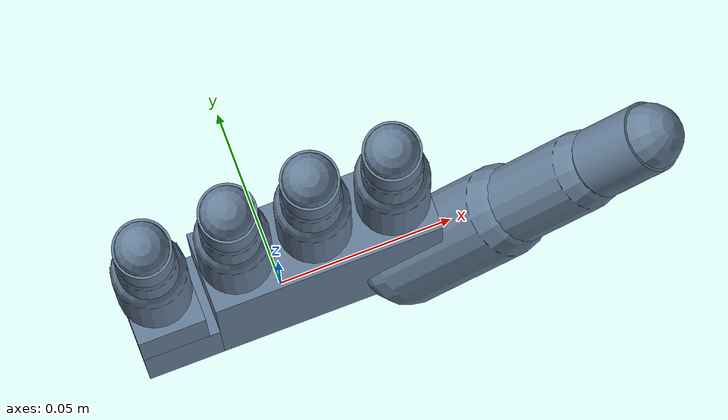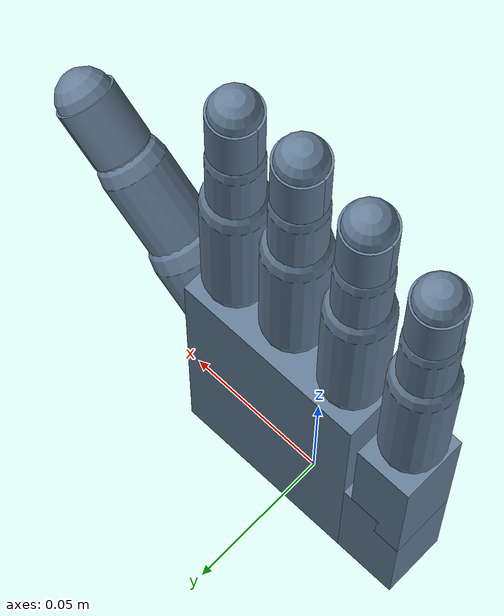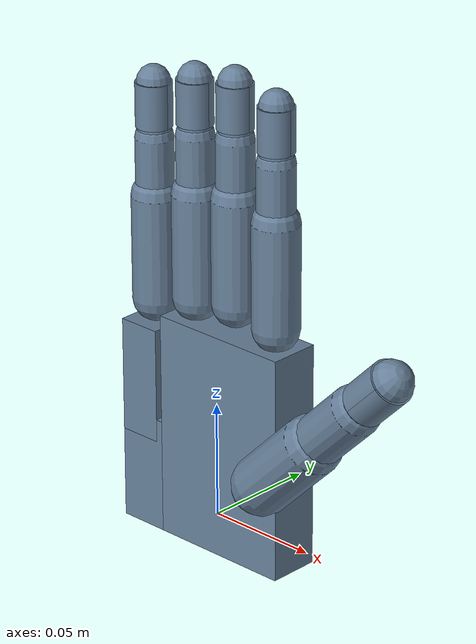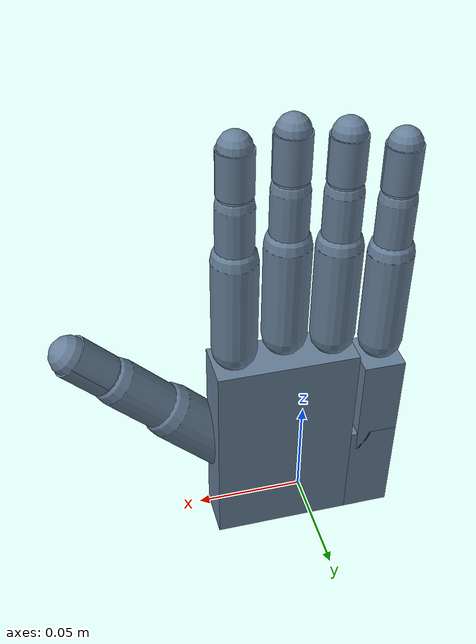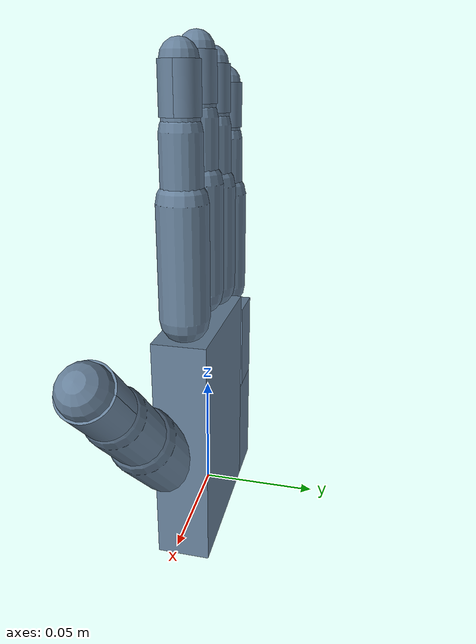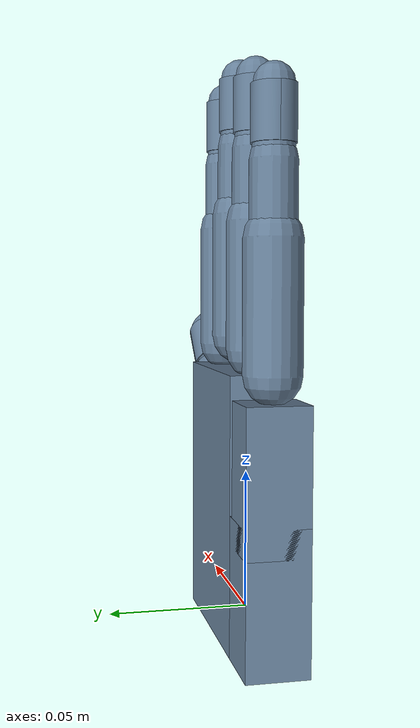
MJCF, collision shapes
<?xml version="1.0" encoding="utf-8"?>
<mujoco>
    <compiler angle="radian" coordinate="local" meshdir="../stls/hand" texturedir="../textures"></compiler>
    <option timestep="0.002" iterations="20" apirate="200">
        <flag warmstart="enable"></flag>
    </option>

    <include file="shared_simple_with_base.xml"></include>

    <asset>
        <include file="shared_asset.xml"></include>
    </asset>

    <worldbody>
        <include file="robot_simple_with_base_sensor.xml"></include>

        <light directional="true" ambient="0.2 0.2 0.2" diffuse="0.8 0.8 0.8" specular="0.3 0.3 0.3" castshadow="false" pos="0 1 4" dir="0 0 -1" name="light0"></light>
    </worldbody>
</mujoco>

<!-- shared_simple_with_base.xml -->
<!-- See LICENSE.md for legal notices. LICENSE.md must be kept together with this file. -->
<mujoco>
    <size njmax="500" nconmax="100" nuser_jnt="1" nuser_site="1" nuser_tendon="1" nuser_sensor="1" nuser_actuator="16" nstack="600000"></size>

    <visual>
        <map fogstart="3" fogend="5" force="0.1"></map>
        <quality shadowsize="4096"></quality>
    </visual>

    <default>
        <default class="robot0:asset_class">
            <geom friction="1 0.005 0.001" condim="3" margin="0.0005" contype="1" conaffinity="1"></geom>
            <joint limited="true" damping="0.1" armature="0.001" margin="0.01" frictionloss="0.001"></joint>
            <site size="0.005" rgba="0.4 0.9 0.4 1"></site>
            <general ctrllimited="true" forcelimited="true"></general>
        </default>
        <default class="robot0:D_Touch">
            <site type="box" size="0.009 0.004 0.013" pos="0 -0.004 0.018" rgba="0.8 0.8 0.8 0.15" group="4"></site>
        </default>
        <default class="robot0:DC_Hand">
            <geom material="robot0:MatColl" contype="1" conaffinity="0" group="4"></geom>
        </default>
        <default class="robot0:DC_sensor">
            <geom material="robot0:MatColl" contype="1" conaffinity="0" group="4" type="mesh"></geom>
        </default>
        <default class="robot0:D_Vizual">
            <geom material="robot0:MatViz" contype="0" conaffinity="0" group="1" type="mesh"></geom>
        </default>
        <default class="robot0:free">
            <joint type="free" damping="0" armature="0" limited="false"></joint>
        </default>
    </default>

    <contact>
        <pair geom1="robot0:C_ffdistal" geom2="robot0:C_thdistal" condim="1"></pair>
        <pair geom1="robot0:C_ffmiddle" geom2="robot0:C_thdistal" condim="1"></pair>
        <pair geom1="robot0:C_ffproximal" geom2="robot0:C_thdistal" condim="1"></pair>
        <pair geom1="robot0:C_mfproximal" geom2="robot0:C_thdistal" condim="1"></pair>
        <pair geom1="robot0:C_mfdistal" geom2="robot0:C_thdistal" condim="1"></pair>
        <pair geom1="robot0:C_rfdistal" geom2="robot0:C_thdistal" condim="1"></pair>
        <pair geom1="robot0:C_lfdistal" geom2="robot0:C_thdistal" condim="1"></pair>
        <pair geom1="robot0:C_palm0" geom2="robot0:C_thdistal" condim="1"></pair>
        <pair geom1="robot0:C_mfdistal" geom2="robot0:C_ffdistal" condim="1"></pair>
        <pair geom1="robot0:C_rfdistal" geom2="robot0:C_mfdistal" condim="1"></pair>
        <pair geom1="robot0:C_lfdistal" geom2="robot0:C_rfdistal" condim="1"></pair>
        <pair geom1="robot0:C_mfproximal" geom2="robot0:C_ffproximal" condim="1"></pair>
        <pair geom1="robot0:C_rfproximal" geom2="robot0:C_mfproximal" condim="1"></pair>
        <pair geom1="robot0:C_lfproximal" geom2="robot0:C_rfproximal" condim="1"></pair>
        <pair geom1="robot0:C_lfdistal" geom2="robot0:C_rfdistal" condim="1"></pair>
        <pair geom1="robot0:C_lfdistal" geom2="robot0:C_mfdistal" condim="1"></pair>
        <pair geom1="robot0:C_lfdistal" geom2="robot0:C_rfmiddle" condim="1"></pair>
        <pair geom1="robot0:C_lfmiddle" geom2="robot0:C_rfdistal" condim="1"></pair>
        <pair geom1="robot0:C_lfmiddle" geom2="robot0:C_rfmiddle" condim="1"></pair>
    </contact>

    <tendon>
        <fixed name="robot0:T_FFJ1c" limited="true" range="-0.001 0.001">
            <joint joint="robot0:FFJ0" coef="0.00705"></joint>
            <joint joint="robot0:FFJ1" coef="-0.00805"></joint>
        </fixed>
        <fixed name="robot0:T_MFJ1c" limited="true" range="-0.001 0.001">
            <joint joint="robot0:MFJ0" coef="0.00705"></joint>
            <joint joint="robot0:MFJ1" coef="-0.00805"></joint>
        </fixed>
        <fixed name="robot0:T_RFJ1c" limited="true" range="-0.001 0.001">
            <joint joint="robot0:RFJ0" coef="0.00705"></joint>
            <joint joint="robot0:RFJ1" coef="-0.00805"></joint>
        </fixed>
        <fixed name="robot0:T_LFJ1c" limited="true" range="-0.001 0.001">
            <joint joint="robot0:LFJ0" coef="0.00705"></joint>
            <joint joint="robot0:LFJ1" coef="-0.00805"></joint>
        </fixed>

    </tendon>

    <sensor>
        <jointpos name="robot0:Sjp_FFJ3" joint="robot0:FFJ3"></jointpos>
        <jointpos name="robot0:Sjp_FFJ2" joint="robot0:FFJ2"></jointpos>
        <jointpos name="robot0:Sjp_FFJ1" joint="robot0:FFJ1"></jointpos>
        <jointpos name="robot0:Sjp_FFJ0" joint="robot0:FFJ0"></jointpos>
        <jointpos name="robot0:Sjp_MFJ3" joint="robot0:MFJ3"></jointpos>
        <jointpos name="robot0:Sjp_MFJ2" joint="robot0:MFJ2"></jointpos>
        <jointpos name="robot0:Sjp_MFJ1" joint="robot0:MFJ1"></jointpos>
        <jointpos name="robot0:Sjp_MFJ0" joint="robot0:MFJ0"></jointpos>
        <jointpos name="robot0:Sjp_RFJ3" joint="robot0:RFJ3"></jointpos>
        <jointpos name="robot0:Sjp_RFJ2" joint="robot0:RFJ2"></jointpos>
        <jointpos name="robot0:Sjp_RFJ1" joint="robot0:RFJ1"></jointpos>
        <jointpos name="robot0:Sjp_RFJ0" joint="robot0:RFJ0"></jointpos>
        <jointpos name="robot0:Sjp_LFJ4" joint="robot0:LFJ4"></jointpos>
        <jointpos name="robot0:Sjp_LFJ3" joint="robot0:LFJ3"></jointpos>
        <jointpos name="robot0:Sjp_LFJ2" joint="robot0:LFJ2"></jointpos>
        <jointpos name="robot0:Sjp_LFJ1" joint="robot0:LFJ1"></jointpos>
        <jointpos name="robot0:Sjp_LFJ0" joint="robot0:LFJ0"></jointpos>
        <jointpos name="robot0:Sjp_THJ4" joint="robot0:THJ4"></jointpos>
        <jointpos name="robot0:Sjp_THJ3" joint="robot0:THJ3"></jointpos>
        <jointpos name="robot0:Sjp_THJ2" joint="robot0:THJ2"></jointpos>
        <jointpos name="robot0:Sjp_THJ1" joint="robot0:THJ1"></jointpos>
        <jointpos name="robot0:Sjp_THJ0" joint="robot0:THJ0"></jointpos>
        <touch name="robot0:ST_Tch_fftip" site="robot0:Tch_fftip"></touch>
        <touch name="robot0:ST_Tch_mftip" site="robot0:Tch_mftip"></touch>
        <touch name="robot0:ST_Tch_rftip" site="robot0:Tch_rftip"></touch>
        <touch name="robot0:ST_Tch_lftip" site="robot0:Tch_lftip"></touch>
        <touch name="robot0:ST_Tch_thtip" site="robot0:Tch_thtip"></touch>
    </sensor>

    <actuator>
        <position name="robot0:A_baseJX" class="robot0:asset_class" joint="robot0:baseJX" ctrlrange="-10000 10000" kp="1" forcerange="-10000 10000"></position>
        <position name="robot0:A_baseJY" class="robot0:asset_class" joint="robot0:baseJY" ctrlrange="-10000 10000" kp="1" forcerange="-10000 10000"></position>
        <position name="robot0:A_baseJZ" class="robot0:asset_class" joint="robot0:baseJZ" ctrlrange="-10000 10000" kp="1" forcerange="-10000 10000"></position>
        <position name="robot0:A_baseJROLL" class="robot0:asset_class" joint="robot0:baseJROLL" ctrlrange="-10000 10000" kp="1" forcerange="-10000 10000"></position>
        <position name="robot0:A_baseJPITCH" class="robot0:asset_class" joint="robot0:baseJPITCH" ctrlrange="-10000 10000" kp="1" forcerange="-10000 10000"></position>
        <position name="robot0:A_baseJYAW" class="robot0:asset_class" joint="robot0:baseJYAW" ctrlrange="-10000 10000" kp="1" forcerange="-10000 10000"></position>

        <position name="robot0:A_FFJ3" class="robot0:asset_class" user="2004" joint="robot0:FFJ3" ctrlrange="-0.349 0.349" kp="1" forcerange="-0.9 0.9"></position>
        <position name="robot0:A_FFJ2" class="robot0:asset_class" user="2002" joint="robot0:FFJ2" ctrlrange="0 1.571" kp="1" forcerange="-0.9 0.9"></position>
        <position name="robot0:A_FFJ1" class="robot0:asset_class" user="2000" joint="robot0:FFJ1" ctrlrange="0 1.571" kp="1" forcerange="-0.7245 0.7245"></position>
        <position name="robot0:A_FFJ0" class="robot0:asset_class" user="2000" joint="robot0:FFJ0" ctrlrange="0 1.571" kp="1" forcerange="-0.7245 0.7245"></position>

        <position name="robot0:A_MFJ3" class="robot0:asset_class" user="2010" joint="robot0:MFJ3" ctrlrange="-0.349 0.349" kp="1" forcerange="-0.9 0.9"></position>
        <position name="robot0:A_MFJ2" class="robot0:asset_class" user="2008" joint="robot0:MFJ2" ctrlrange="0 1.571" kp="1" forcerange="-0.9 0.9"></position>
        <position name="robot0:A_MFJ1" class="robot0:asset_class" user="2006" joint="robot0:MFJ1" ctrlrange="0 1.571" kp="1" forcerange="-0.7245 0.7245"></position>
        <position name="robot0:A_MFJ0" class="robot0:asset_class" user="2006" joint="robot0:MFJ0" ctrlrange="0 1.571" kp="1" forcerange="-0.7245 0.7245"></position>

        <position name="robot0:A_RFJ3" class="robot0:asset_class" user="2016" joint="robot0:RFJ3" ctrlrange="-0.349 0.349" kp="1" forcerange="-0.9 0.9"></position>
        <position name="robot0:A_RFJ2" class="robot0:asset_class" user="2014" joint="robot0:RFJ2" ctrlrange="0 1.571" kp="1" forcerange="-0.9 0.9"></position>
        <position name="robot0:A_RFJ1" class="robot0:asset_class" user="2012" joint="robot0:RFJ1" ctrlrange="0 1.571" kp="1" forcerange="-0.7245 0.7245"></position>
        <position name="robot0:A_RFJ0" class="robot0:asset_class" user="2012" joint="robot0:RFJ0" ctrlrange="0 1.571" kp="1" forcerange="-0.7245 0.7245"></position>

        <position name="robot0:A_LFJ4" class="robot0:asset_class" user="2024" joint="robot0:LFJ4" ctrlrange="0 0.785" kp="1" forcerange="-0.9 0.9"></position>
        <position name="robot0:A_LFJ3" class="robot0:asset_class" user="2022" joint="robot0:LFJ3" ctrlrange="-0.349 0.349" kp="1" forcerange="-0.9 0.9"></position>
        <position name="robot0:A_LFJ2" class="robot0:asset_class" user="2020" joint="robot0:LFJ2" ctrlrange="0 1.571" kp="1" forcerange="-0.9 0.9"></position>
        <position name="robot0:A_LFJ1" class="robot0:asset_class" user="2018" joint="robot0:LFJ1" ctrlrange="0 1.571" kp="1" forcerange="-0.7245 0.7245"></position>
        <position name="robot0:A_LFJ0" class="robot0:asset_class" user="2018" joint="robot0:LFJ0" ctrlrange="0 1.571" kp="1" forcerange="-0.7245 0.7245"></position>

        <position name="robot0:A_THJ4" class="robot0:asset_class" user="2034" joint="robot0:THJ4" ctrlrange="-1.047 1.047" kp="1" forcerange="-2.3722 2.3722"></position>
        <position name="robot0:A_THJ3" class="robot0:asset_class" user="2032" joint="robot0:THJ3" ctrlrange="0 1.222" kp="1" forcerange="-1.45 1.45"></position>
        <position name="robot0:A_THJ2" class="robot0:asset_class" user="2030" joint="robot0:THJ2" ctrlrange="-0.209 0.209" kp="1" forcerange="-0.99 0.99"></position>
        <position name="robot0:A_THJ1" class="robot0:asset_class" user="2028" joint="robot0:THJ1" ctrlrange="-0.524 0.524" kp="1" forcerange="-0.99 0.99"></position>
        <position name="robot0:A_THJ0" class="robot0:asset_class" user="2026" joint="robot0:THJ0" ctrlrange="-1.571 0" kp="1" forcerange="-0.81 0.81"></position>
    </actuator>
</mujoco>

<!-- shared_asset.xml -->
<!-- See LICENSE.md for legal notices. LICENSE.md must be kept together with this file. -->
<mujoco>
    <texture type="skybox" builtin="gradient" rgb1="0.44 0.85 0.56" rgb2="0.46 0.87 0.58" width="32" height="32"></texture>

    <texture name="robot0:texplane" type="2d" builtin="checker" rgb1="0.2 0.3 0.4" rgb2="0.1 0.15 0.2" width="512" height="512"></texture>
    <texture name="robot0:texgeom" type="cube" builtin="flat" mark="cross" width="127" height="127" rgb1="0.3 0.6 0.5" rgb2="0.3 0.6 0.5" markrgb="0 0 0" random="0.01"></texture>

    <material name="robot0:MatGnd" reflectance="0.5" texture="robot0:texplane" texrepeat="1 1" texuniform="true"></material>
    <material name="robot0:MatColl" specular="1" shininess="0.3" reflectance="0.5" rgba="0.4 0.5 0.6 1"></material>
    <material name="robot0:MatViz" specular="0.75" shininess="0.1" reflectance="0.5" rgba="0.93 0.93 0.93 1"></material>
    <material name="robot0:object" texture="robot0:texgeom" texuniform="false"></material>
    <material name="floor_mat" specular="0" shininess="0.5" reflectance="0" rgba="0.2 0.2 0.2 0"></material>

    <mesh name="robot0:forearm" file="forearm_electric.stl"></mesh>
    <mesh name="robot0:forearm_cvx" file="forearm_electric_cvx.stl"></mesh>
    <mesh name="robot0:wrist" scale="0.001 0.001 0.001" file="wrist.stl"></mesh>
    <mesh name="robot0:palm" scale="0.001 0.001 0.001" file="palm.stl"></mesh>
    <mesh name="robot0:knuckle" scale="0.001 0.001 0.001" file="knuckle.stl"></mesh>
    <mesh name="robot0:F3" scale="0.001 0.001 0.001" file="F3.stl"></mesh>
    <mesh name="robot0:F2" scale="0.001 0.001 0.001" file="F2.stl"></mesh>
    <mesh name="robot0:F1" scale="0.001 0.001 0.001" file="F1.stl"></mesh>
    <mesh name="robot0:lfmetacarpal" scale="0.001 0.001 0.001" file="lfmetacarpal.stl"></mesh>
    <mesh name="robot0:TH3_z" scale="0.001 0.001 0.001" file="TH3_z.stl"></mesh>
    <mesh name="robot0:TH2_z" scale="0.001 0.001 0.001" file="TH2_z.stl"></mesh>
    <mesh name="robot0:TH1_z" scale="0.001 0.001 0.001" file="TH1_z.stl"></mesh>
    <mesh name="robot0:contact_sensor" scale="0.955 0.955 1.05" file="contact_sensor.stl"></mesh>
    <mesh name="robot0:TH_contact_sensor" scale="1.22 1.22 1.11" file="contact_sensor.stl"></mesh>
</mujoco>

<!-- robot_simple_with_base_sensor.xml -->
<!-- See LICENSE.md for legal notices. LICENSE.md must be kept together with this file. -->
<mujoco>
    <body name="robot0:base" pos="0 0 0" euler="0 0 0">
        <inertial mass="0.1" pos="0 0 0" diaginertia="0.001 0.001 0.001"></inertial>
        <body name="robot0:baseX" pos="0 0 0" euler="0 0 0">
            <inertial mass="0.1" pos="0 0 0" diaginertia="0.001 0.001 0.001"></inertial>
            <joint name="robot0:baseJX" type="slide" pos="0 0 0" axis="1 0 0" range="-10000.0 10000.0"></joint>
            <body name="robot0:baseY" pos="0 0 0" euler="0 0 0">
                <inertial mass="0.1" pos="0 0 0" diaginertia="0.001 0.001 0.001"></inertial>
                <joint name="robot0:baseJY" type="slide" pos="0 0 0" axis="0 1 0" range="-10000.0 10000.0"></joint>
                <body name="robot0:baseZ" pos="0 0 0" euler="0 0 0">
                    <inertial mass="0.1" pos="0 0 0" diaginertia="0.001 0.001 0.001"></inertial>
                    <joint name="robot0:baseJZ" type="slide" pos="0 0 0" axis="0 0 1" range="-10000.0 10000.0"></joint>
                    <body name="robot0:baseROLL" pos="0 0 0" euler="0 0 0">
                        <inertial mass="0.1" pos="0 0 0" diaginertia="0.001 0.001 0.001"></inertial>
                        <joint name="robot0:baseJROLL" type="hinge" pos="0 0 0" axis="0 0 1" range="-10000.0 10000.0"></joint>
                        <body name="robot0:basePITCH" pos="0 0 0" euler="0 0 0">
                            <inertial mass="0.1" pos="0 0 0" diaginertia="0.001 0.001 0.001"></inertial>
                            <joint name="robot0:baseJPITCH" type="hinge" pos="0 0 0" axis="0 1 0" range="-10000.0 10000.0"></joint>
                            <body name="robot0:hand mount" pos="0 0 0" euler="0 0 0">
                                <inertial mass="0.1" pos="0 0 0" diaginertia="0.001 0.001 0.001"></inertial>
                                <joint name="robot0:baseJYAW" type="hinge" pos="0 0 0" axis="1 0 0" range="-10000.0 10000.0"></joint>
                                <body childclass="robot0:asset_class" name="robot0:palm" pos="0 0 0" euler="0 0 0">
                                    <inertial pos="0.006 0 0.036" quat="0.716 0.044 0.075 0.693" mass="0.3" diaginertia="0.001 0.001 0.001"></inertial>
                                    <geom class="robot0:D_Vizual" name="robot0:V_palm" mesh="robot0:palm"></geom>
                                    <geom class="robot0:DC_Hand" name="robot0:C_palm0" type="box" pos="0.011 0 0.038" size="0.032 0.0111 0.049" rgba="0.4 0.5 0.6 0.1"></geom>
                                    <geom class="robot0:DC_Hand" name="robot0:C_palm1" type="box" pos="-0.032 0 0.014" size="0.011 0.0111 0.025" rgba="0.4 0.5 0.6 0.1"></geom>
                                    <body name="robot0:ffknuckle" pos="0.033 0 0.095">
                                        <inertial pos="0 0 0" quat="0.52 0.854 0.006 -0.003" mass="0.008" diaginertia="1e-05 1e-05 1e-05"></inertial>
                                        <joint name="robot0:FFJ3" type="hinge" pos="0 0 0" axis="0 -1 0" range="-0.2618 0.2618" user="1103"></joint>
                                        <geom class="robot0:D_Vizual" name="robot0:V_ffknuckle" mesh="robot0:knuckle"></geom>
                                        <body name="robot0:ffproximal" pos="0 0 0">
                                            <inertial pos="0 0 0.023" quat="0.707 -0.004 0.004 0.707" mass="0.014" diaginertia="1e-05 1e-05 1e-05"></inertial>
                                            <joint name="robot0:FFJ2" type="hinge" pos="0 0 0" axis="1 0 0" range="-0.2618 1.571" user="1102"></joint>
                                            <geom class="robot0:D_Vizual" name="robot0:V_ffproximal" mesh="robot0:F3"></geom>
                                            <geom class="robot0:DC_Hand" name="robot0:C_ffproximal" type="capsule" pos="0 0 0.0225" size="0.01 0.0225"></geom>
                                            <body name="robot0:ffmiddle" pos="0 0 0.045">
                                                <inertial pos="0 0 0.011" quat="0.707 0 0 0.707" mass="0.012" diaginertia="1e-05 1e-05 1e-05"></inertial>
                                                <joint name="robot0:FFJ1" type="hinge" pos="0 0 0" axis="1 0 0" range="0 1.571" user="1101"></joint>
                                                <geom class="robot0:D_Vizual" name="robot0:V_ffmiddle" mesh="robot0:F2"></geom>
                                                <geom class="robot0:DC_Hand" name="robot0:C_ffmiddle" type="capsule" pos="0 0 0.0125" size="0.00805 0.0125"></geom>
                                                <body name="robot0:ffdistal" pos="0 0 0.025">
                                                    <inertial pos="0 0 0.015" quat="0.707 -0.003 0.003 0.707" mass="0.01" diaginertia="1e-05 1e-05 1e-05"></inertial>
                                                    <joint name="robot0:FFJ0" type="hinge" pos="0 0 0" axis="1 0 0" range="0 1.571" user="1100"></joint>
                                                    <geom class="robot0:D_Vizual" name="robot0:V_ffdistal" pos="0 0 0.001" mesh="robot0:F1"></geom>
                                                    <geom class="robot0:DC_Hand" name="robot0:C_ffdistal" type="capsule" pos="0 0 0.012" size="0.00705 0.012" condim="4"></geom>
                                                    <site name="robot0:S_fftip" pos="0 0 0.026" group="3"></site>
                                                    <site class="robot0:D_Touch" name="robot0:Tch_fftip"></site>
                                                    <body name="robot0:fftip_center" pos="0 -0.0071 0.0145" quat="0.000 0.000 0.707 0.707">
                                                        <geom name="robot0:fftip_center_box" type="box" pos="0 0 0" size="0.00001 0.00001 0.0001" condim="4" contype="1" conaffinity="0" group="4"></geom>
                                                    </body>
                                                    <body name="robot0:fftip_center_middle" pos="0 -0.00 0.016" quat="0.000 0.000 0.707 0.707">
                                                        <geom name="robot0:fftip_center_middle_box" type="box" pos="0 0 0" size="0.00001 0.00001 0.0001" condim="4" contype="1" conaffinity="0" group="4"></geom>
                                                    </body>
                                                    <body name="robot0:fftip_ccenter_back" pos="0 0.0071 0.0145" quat="0.000 0.000 0.707 0.707">
                                                        <geom name="robot0:fftip_center_back_box" type="box" pos="0 0 0" size="0.00001 0.00001 0.0001" condim="4" contype="1" conaffinity="0" group="4"></geom>
                                                    </body>
                                                    <body name="robot0:ffdistal_fsr" pos="0 -0.0 0.005" quat="0.707 0.000 0.000 0.707">
                                                        <geom class="robot0:DC_sensor" name="robot0:ffdistal_fsr_bd" mesh="robot0:contact_sensor" pos="0 0 0"></geom>
                                                    </body>
                                                    <body name="robot0:ffdistal_fsr_outside" pos="0 -0.0 0.005" quat="-0.7068252 0 0 0.7073883">
                                                        <geom class="robot0:DC_sensor" name="robot0:ffdistal_fsr_bd" mesh="robot0:contact_sensor" pos="0 0 0"></geom>
                                                    </body>
                                                </body>
                                            </body>
                                        </body>
                                    </body>
                                    <body name="robot0:mfknuckle" pos="0.011 0 0.099">
                                        <inertial pos="0 0 0" quat="0.52 0.854 0.006 -0.003" mass="0.008" diaginertia="1e-05 1e-05 1e-05"></inertial>
                                        <joint name="robot0:MFJ3" type="hinge" pos="0 0 0" axis="0 -1 0" range="-0.2618 0.2618" user="1107"></joint>
                                        <geom class="robot0:D_Vizual" name="robot0:V_mfknuckle" mesh="robot0:knuckle"></geom>
                                        <body name="robot0:mfproximal" pos="0 0 0">
                                            <inertial pos="0 0 0.023" quat="0.707 -0.004 0.004 0.707" mass="0.014" diaginertia="1e-05 1e-05 1e-05"></inertial>
                                            <joint name="robot0:MFJ2" type="hinge" pos="0 0 0" axis="1 0 0" range="-0.2618 1.571" user="1106"></joint>
                                            <geom class="robot0:D_Vizual" name="robot0:V_mfproximal" mesh="robot0:F3"></geom>
                                            <geom class="robot0:DC_Hand" name="robot0:C_mfproximal" type="capsule" pos="0 0 0.0225" size="0.01 0.0225"></geom>
                                            <body name="robot0:mfmiddle" pos="0 0 0.045">
                                                <inertial pos="0 0 0.012" quat="0.707 0 0 0.707" mass="0.012" diaginertia="1e-05 1e-05 1e-05"></inertial>
                                                <joint name="robot0:MFJ1" type="hinge" pos="0 0 0" axis="1 0 0" range="0 1.571" user="1105"></joint>
                                                <geom class="robot0:D_Vizual" name="robot0:V_mfmiddle" mesh="robot0:F2"></geom>
                                                <geom class="robot0:DC_Hand" name="robot0:C_mfmiddle" type="capsule" pos="0 0 0.0125" size="0.00805 0.0125"></geom>
                                                <body name="robot0:mfdistal" pos="0 0 0.025">
                                                    <inertial pos="0 0 0.015" quat="0.707 -0.003 0.003 0.707" mass="0.01" diaginertia="1e-05 1e-05 1e-05"></inertial>
                                                    <joint name="robot0:MFJ0" type="hinge" pos="0 0 0" axis="1 0 0" range="0 1.571" user="1104"></joint>
                                                    <geom class="robot0:D_Vizual" name="robot0:V_mfdistal" mesh="robot0:F1"></geom>
                                                    <geom class="robot0:DC_Hand" name="robot0:C_mfdistal" type="capsule" pos="0 0 0.012" size="0.00705 0.012" condim="4"></geom>
                                                    <site name="robot0:S_mftip" pos="0 0 0.026" group="3"></site>
                                                    <site class="robot0:D_Touch" name="robot0:Tch_mftip"></site>
                                                    <body name="robot0:mftip_center" pos="0 -0.0071 0.0145" quat="0.000 0.000 0.707 0.707">
                                                        <geom name="robot0:mftip_center_box" type="box" pos="0 0 0" size="0.00001 0.00001 0.0001" condim="4" contype="1" conaffinity="0" group="4"></geom>
                                                    </body>
                                                    <body name="robot0:mftip_center_middle" pos="0 -0.00 0.016" quat="0.000 0.000 0.707 0.707">
                                                        <geom name="robot0:mftip_center_middle_box" type="box" pos="0 0 0" size="0.00001 0.00001 0.0001" condim="4" contype="1" conaffinity="0" group="4"></geom>
                                                    </body>
                                                    <body name="robot0:mftip_center_back" pos="0 0.0071 0.0145" quat="0.000 0.000 0.707 0.707">
                                                        <geom name="robot0:mftip_center_back_box" type="box" pos="0 0 0" size="0.00001 0.00001 0.0001" condim="4" contype="1" conaffinity="0" group="4"></geom>
                                                    </body>
                                                    <body name="robot0:mfdistal_fsr" pos="0 -0.0 0.005" quat="0.707 0.000 0.000 0.707">
                                                        <geom class="robot0:DC_sensor" name="robot0:mfdistal_fsr_bd" mesh="robot0:contact_sensor" pos="0 0 0"></geom>
                                                    </body>
                                                    <body name="robot0:mfdistal_fsr_outside" pos="0 -0.0 0.005" quat="-0.707 0.000 0.000 0.707">
                                                        <geom class="robot0:DC_sensor" name="robot0:mfdistal_fsr_bd" mesh="robot0:contact_sensor" pos="0 0 0"></geom>
                                                    </body>
                                                </body>
                                            </body>
                                        </body>
                                    </body>
                                    <body name="robot0:rfknuckle" pos="-0.011 0 0.095">
                                        <inertial pos="0 0 0" quat="0.52 0.854 0.006 -0.003" mass="0.008" diaginertia="1e-05 1e-05 1e-05"></inertial>
                                        <joint name="robot0:RFJ3" type="hinge" pos="0 0 0" axis="0 -1 0" range="-0.2618 0.2618" user="1111"></joint>
                                        <geom class="robot0:D_Vizual" name="robot0:V_rfknuckle" mesh="robot0:knuckle"></geom>
                                        <body name="robot0:rfproximal" pos="0 0 0">
                                            <inertial pos="0 0 0.023" quat="0.707 -0.004 0.004 0.707" mass="0.014" diaginertia="1e-05 1e-05 1e-05"></inertial>
                                            <joint name="robot0:RFJ2" type="hinge" pos="0 0 0" axis="1 0 0" range="-0.2618 1.571" user="1110"></joint>
                                            <geom class="robot0:D_Vizual" name="robot0:V_rfproximal" mesh="robot0:F3"></geom>
                                            <geom class="robot0:DC_Hand" name="robot0:C_rfproximal" type="capsule" pos="0 0 0.0225" size="0.01 0.0225"></geom>
                                            <body name="robot0:rfmiddle" pos="0 0 0.045">
                                                <inertial pos="0 0 0.012" quat="0.707 0 0 0.707" mass="0.012" diaginertia="1e-05 1e-05 1e-05"></inertial>
                                                <joint name="robot0:RFJ1" type="hinge" pos="0 0 0" axis="1 0 0" range="0 1.571" user="1109"></joint>
                                                <geom class="robot0:D_Vizual" name="robot0:V_rfmiddle" mesh="robot0:F2"></geom>
                                                <geom class="robot0:DC_Hand" name="robot0:C_rfmiddle" type="capsule" pos="0 0 0.0125" size="0.00805 0.0125"></geom>
                                                <body name="robot0:rfdistal" pos="0 0 0.025">
                                                    <inertial pos="0 0 0.015" quat="0.707 -0.003 0.003 0.707" mass="0.01" diaginertia="1e-05 1e-05 1e-05"></inertial>
                                                    <joint name="robot0:RFJ0" type="hinge" pos="0 0 0" axis="1 0 0" range="0 1.571" user="1108"></joint>
                                                    <geom class="robot0:D_Vizual" name="robot0:V_rfdistal" mesh="robot0:F1" pos="0 0 0.001"></geom>
                                                    <geom class="robot0:DC_Hand" name="robot0:C_rfdistal" type="capsule" pos="0 0 0.012" size="0.00705 0.012" condim="4"></geom>
                                                    <site name="robot0:S_rftip" pos="0 0 0.026" group="3"></site>
                                                    <site class="robot0:D_Touch" name="robot0:Tch_rftip"></site>
                                                    <body name="robot0:rftip_center" pos="0 -0.0071 0.0145" quat="0.000 0.000 0.707 0.707">
                                                        <geom name="robot0:rftip_center_box" type="box" pos="0 0 0" size="0.00001 0.00001 0.0001" condim="4" contype="1" conaffinity="0" group="4"></geom>
                                                    </body>
                                                    <body name="robot0:rftip_center_middle" pos="0 -0.00 0.016" quat="0.000 0.000 0.707 0.707">
                                                        <geom name="robot0:rftip_center_middle_box" type="box" pos="0 0 0" size="0.00001 0.00001 0.0001" condim="4" contype="1" conaffinity="0" group="4"></geom>
                                                    </body>
                                                    <body name="robot0:rftip_center_back" pos="0 0.0071 0.0145" quat="0.000 0.000 0.707 0.707">
                                                        <geom name="robot0:rftip_center_back_box" type="box" pos="0 0 0" size="0.00001 0.00001 0.0001" condim="4" contype="1" conaffinity="0" group="4"></geom>
                                                    </body>
                                                    <body name="robot0:rfdistal_fsr" pos="0 -0.0 0.005" quat="0.707 0.000 0.000 0.707">
                                                        <geom class="robot0:DC_sensor" name="robot0:rfdistal_fsr_bd" mesh="robot0:contact_sensor" pos="0 0 0"></geom>
                                                    </body>
                                                    <body name="robot0:rfdistal_fsr_outside" pos="0 -0.0 0.005" quat="-0.707 0.000 0.000 0.707">
                                                        <geom class="robot0:DC_sensor" name="robot0:rfdistal_fsr_bd" mesh="robot0:contact_sensor" pos="0 0 0"></geom>
                                                    </body>
                                                </body>
                                            </body>
                                        </body>
                                    </body>
                                    <body name="robot0:lfmetacarpal" pos="-0.017 0 0.044">
                                        <inertial pos="-0.014 0.001 0.014" quat="0.709 -0.092 -0.063 0.696" mass="0.075" diaginertia="1e-05 1e-05 1e-05"></inertial>
                                        <joint name="robot0:LFJ4" type="hinge" pos="0 0 0" axis="0.571 0 0.821" range="0 0.785" user="1116"></joint>
                                        <geom class="robot0:D_Vizual" name="robot0:V_lfmetacarpal" pos="-0.016 0 -0.023" mesh="robot0:lfmetacarpal"></geom>
                                        <geom class="robot0:DC_Hand" name="robot0:C_lfmetacarpal" type="box" pos="-0.0165 0 0.01" size="0.0095 0.0111 0.025" rgba="0.4 0.5 0.6 0.2"></geom>
                                        <body name="robot0:lfknuckle" pos="-0.017 0 0.044">
                                            <inertial pos="0 0 0" quat="0.52 0.854 0.006 -0.003" mass="0.008" diaginertia="1e-05 1e-05 1e-05"></inertial>
                                            <joint name="robot0:LFJ3" type="hinge" pos="0 0 0" axis="0 -1 0" range="-0.2618 0.2618" user="1115"></joint>
                                            <geom class="robot0:D_Vizual" name="robot0:V_lfknuckle" mesh="robot0:knuckle"></geom>
                                            <body name="robot0:lfproximal" pos="0 0 0">
                                                <inertial pos="0 0 0.023" quat="0.707 -0.004 0.004 0.707" mass="0.014" diaginertia="1e-05 1e-05 1e-05"></inertial>
                                                <joint name="robot0:LFJ2" type="hinge" pos="0 0 0" axis="1 0 0" range="-0.2618 1.571" user="1114"></joint>
                                                <geom class="robot0:D_Vizual" name="robot0:V_lfproximal" mesh="robot0:F3"></geom>
                                                <geom class="robot0:DC_Hand" name="robot0:C_lfproximal" type="capsule" pos="0 0 0.0225" size="0.01 0.0225"></geom>
                                                <body name="robot0:lfmiddle" pos="0 0 0.045">
                                                    <inertial pos="0 0 0.012" quat="0.707 0 0 0.707" mass="0.012" diaginertia="1e-05 1e-05 1e-05"></inertial>
                                                    <joint name="robot0:LFJ1" type="hinge" pos="0 0 0" axis="1 0 0" range="0 1.571" user="1113"></joint>
                                                    <geom class="robot0:D_Vizual" name="robot0:V_lfmiddle" mesh="robot0:F2"></geom>
                                                    <geom class="robot0:DC_Hand" name="robot0:C_lfmiddle" type="capsule" pos="0 0 0.0125" size="0.00805 0.0125"></geom>
                                                    <body name="robot0:lfdistal" pos="0 0 0.025">
                                                        <inertial pos="0 0 0.015" quat="0.707 -0.003 0.003 0.707" mass="0.01" diaginertia="1e-05 1e-05 1e-05"></inertial>
                                                        <joint name="robot0:LFJ0" type="hinge" pos="0 0 0" axis="1 0 0" range="0 1.571" user="1112"></joint>
                                                        <geom class="robot0:D_Vizual" name="robot0:V_lfdistal" mesh="robot0:F1" pos="0 0 0.001"></geom>
                                                        <geom class="robot0:DC_Hand" name="robot0:C_lfdistal" type="capsule" pos="0 0 0.012" size="0.00705 0.012" condim="4"></geom>
                                                        <site name="robot0:S_lftip" pos="0 0 0.026" group="3"></site>
                                                        <site class="robot0:D_Touch" name="robot0:Tch_lftip"></site>
                                                        <body name="robot0:lftip_center" pos="0 -0.0071 0.0145" quat="0.000 0.000 0.707 0.707">
                                                            <geom name="robot0:lftip_center_box" type="box" pos="0 0 0" size="0.00001 0.00001 0.0001" condim="4" contype="1" conaffinity="0" group="4"></geom>
                                                        </body>
                                                        <body name="robot0:lftip_center_middle" pos="0 -0.00 0.016" quat="0.000 0.000 0.707 0.707">
                                                            <geom name="robot0:lftip_center_middle_box" type="box" pos="0 0 0" size="0.00001 0.00001 0.0001" condim="4" contype="1" conaffinity="0" group="4"></geom>
                                                        </body>
                                                        <body name="robot0:lftip_center_back" pos="0 0.0071 0.0145" quat="0.000 0.000 0.707 0.707">
                                                            <geom name="robot0:lftip_center_back_box" type="box" pos="0 0 0" size="0.00001 0.00001 0.0001" condim="4" contype="1" conaffinity="0" group="4"></geom>
                                                        </body>
                                                        <body name="robot0:lfdistal_fsr" pos="0 -0.0 0.005" quat="0.707 0.000 0.000 0.707">
                                                            <geom class="robot0:DC_sensor" name="robot0:lfdistal_fsr_bd" mesh="robot0:contact_sensor" pos="0 0 0"></geom>
                                                        </body>
                                                        <body name="robot0:lfdistal_fsr_outside" pos="0 -0.0 0.005" quat="-0.707 0.000 0.000 0.707">
                                                            <geom class="robot0:DC_sensor" name="robot0:lfdistal_fsr_bd" mesh="robot0:contact_sensor" pos="0 0 0"></geom>
                                                        </body>
                                                    </body>
                                                </body>
                                            </body>
                                        </body>
                                    </body>
                                    <body name="robot0:thbase" pos="0.034 -0.009 0.029" axisangle="0 1 0 0.785">
                                        <inertial pos="0 0 0" mass="0.01" diaginertia="1e-05 1e-05 1e-05"></inertial>
                                        <joint name="robot0:THJ4" type="hinge" pos="0 0 0" axis="0 0 1" range="-1.047 1.047" user="1121"></joint>
                                        <geom name="robot0:V_thbase" type="box" group="1" pos="0 0 0" size="0.001 0.001 0.001"></geom>
                                        <body name="robot0:thproximal" pos="0 0 0">
                                            <inertial pos="0 0 0.017" quat="0.982 0 0.001 0.191" mass="0.016" diaginertia="1e-05 1e-05 1e-05"></inertial>
                                            <joint name="robot0:THJ3" type="hinge" pos="0 0 0" axis="1 0 0" range="0 1.222" user="1120"></joint>
                                            <geom class="robot0:D_Vizual" name="robot0:V_thproximal" mesh="robot0:TH3_z"></geom>
                                            <geom class="robot0:DC_Hand" name="robot0:C_thproximal" type="capsule" pos="0 0 0.019" size="0.013 0.019" rgba="0.4 0.5 0.6 0.1"></geom>
                                            <body name="robot0:thhub" pos="0 0 0.038">
                                                <inertial pos="0 0 0" mass="0.002" diaginertia="1e-05 1e-05 1e-05"></inertial>
                                                <joint name="robot0:THJ2" type="hinge" pos="0 0 0" axis="-1 0 0" range="-0.209 0.209" user="1119"></joint>
                                                <geom name="robot0:V_thhub" type="box" group="1" pos="0 0 0" size="0.001 0.001 0.001"></geom>
                                                <body name="robot0:thmiddle" pos="0 0 0">
                                                    <inertial pos="0 0 0.016" quat="1 -0.001 -0.007 0.003" mass="0.016" diaginertia="1e-05 1e-05 1e-05"></inertial>
                                                    <joint name="robot0:THJ1" type="hinge" pos="0 0 0" axis="0 -1 0" range="-0.524 0.524" user="1118"></joint>
                                                    <geom class="robot0:D_Vizual" name="robot0:V_thmiddle" mesh="robot0:TH2_z"></geom>
                                                    <geom class="robot0:DC_Hand" name="robot0:C_thmiddle" type="capsule" pos="0 0 0.016" size="0.011 0.016"></geom>
                                                    <body name="robot0:thdistal" pos="0 0 0.032">
                                                        <inertial pos="0 0 0.016" quat="0.999 -0.005 -0.047 0.005" mass="0.016" diaginertia="1e-05 1e-05 1e-05"></inertial>
                                                        <joint name="robot0:THJ0" type="hinge" pos="0 0 0" axis="0 -1 0" range="0 1.571" user="1117"></joint>
                                                        <geom class="robot0:D_Vizual" name="robot0:V_thdistal" mesh="robot0:TH1_z"></geom>
                                                        <geom class="robot0:DC_Hand" name="robot0:C_thdistal" type="capsule" pos="0 0 0.013" size="0.00918 0.013" condim="4"></geom>
                                                        <site name="robot0:S_thtip" pos="0 0 0.0275" group="3"></site>
                                                        <site class="robot0:D_Touch" name="robot0:Tch_thtip" size="0.005 0.011 0.016" pos="-0.005 0 0.02"></site>
                                                        <body name="robot0:thtip_center" pos="-0.00923 0 0.0165" quat="0.000 0.707 0.000 0.707">
                                                            <geom name="robot0:thtip_center_box" type="box" pos="0 0 0" size="0.00001 0.00001 0.0001" condim="4" contype="1" conaffinity="0" group="4"></geom>
                                                        </body>
                                                        <body name="robot0:thtip_center_middle" pos="-0.0 0 0.0165" quat="0.000 0.707 0.000 0.707">
                                                            <geom name="robot0:thtip_center_middle_box" type="box" pos="0 0 0" size="0.00001 0.00001 0.0001" condim="4" contype="1" conaffinity="0" group="4"></geom>
                                                        </body>
                                                        <body name="robot0:thtip_center_back" pos="0.00923 0 0.0165" quat="0.000 0.707 0.000 0.707">
                                                            <geom name="robot0:thtip_center_back_box" type="box" pos="0 0 0" size="0.00001 0.00001 0.0001" condim="4" contype="1" conaffinity="0" group="4"></geom>
                                                        </body>
                                                        <body name="robot0:thdistal_fsr" pos="-0.0 -0.0 0.0065" quat="-1.000 0.000 0.000 0.000">
                                                            <geom class="robot0:DC_sensor" name="robot0:thdistal_fsr_bd" mesh="robot0:TH_contact_sensor" pos="0 0 0"></geom>
                                                        </body>
                                                        <body name="robot0:thdistal_fsr_outside" pos="-0.0 -0.0 0.0065" quat="0 0.000 0.000 1.000">
                                                            <geom class="robot0:DC_sensor" name="robot0:thdistal_fsr_bd" mesh="robot0:TH_contact_sensor" pos="0 0 0"></geom>
                                                        </body>
                                                    </body>
                                                </body>
                                            </body>
                                        </body>
                                    </body>
                                </body>
                            </body>
                        </body>
                    </body>
                </body>
            </body>
        </body>
     </body>
</mujoco>
